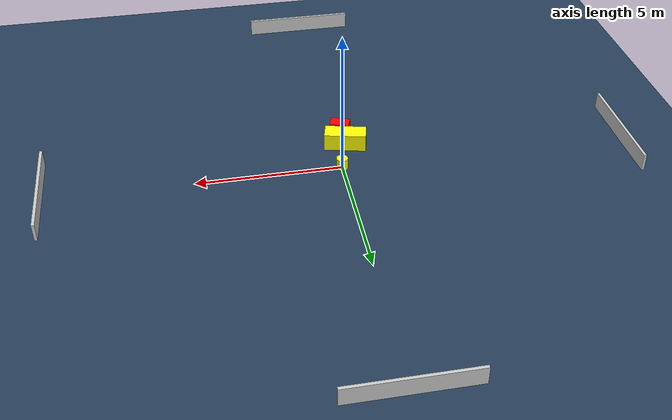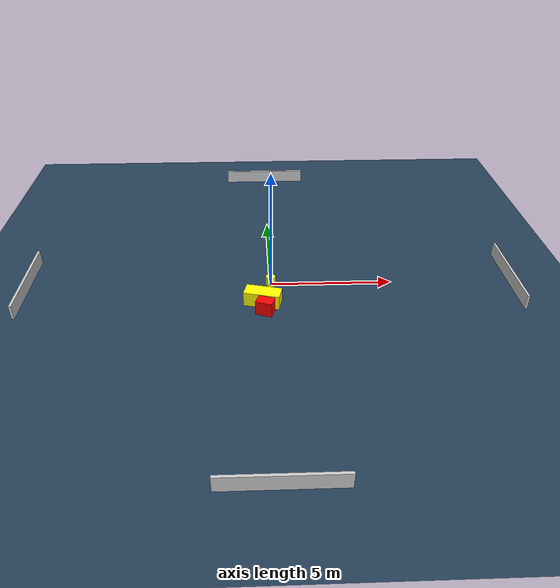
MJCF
<?xml version="1.0" ?>
<mujoco model="generated_environment">
  <option timestep="0.01" integrator="RK4" cone="elliptic"/>
  <default>
    <geom density="1"/>
  </default>
  <asset>
    <texture builtin="gradient" height="3072" name="skybox" rgb1="0.3 0.5 0.7" rgb2="0 0 0" type="skybox" width="512"/>
    <texture builtin="checker" height="300" name="groundplane" rgb1="0.2 0.3 0.4" rgb2="0.1 0.2 0.3" type="2d" width="300"/>
    <material name="groundplane" reflectance="0.2" texrepeat="5 5" texture="groundplane"/>
  </asset>
  <worldbody>
    <light dir="0 0 -1" directional="true" pos="0 0 1.5"/>
    <geom condim="3" friction="0.5 0.005 0.001" material="groundplane" name="floor" pos="0 0 0" size="0 0 0.05" type="plane"/>
    <body name="walls">
      <geom name="wall_1" condim="4" pos="-10.0 0.0 0.3" rgba="0.800000011920929 0.800000011920929 0.800000011920929 1.0" size="0.05 2.0 0.3" type="box"/>
      <geom name="wall_2" condim="4" pos="10.0 0.0 0.3" rgba="0.800000011920929 0.800000011920929 0.800000011920929 1.0" size="0.05 2.0 0.3" type="box"/>
      <geom name="wall_3" condim="4" pos="0.0 -10.0 0.3" rgba="0.800000011920929 0.800000011920929 0.800000011920929 1.0" size="2.0 0.05 0.3" type="box"/>
      <geom name="wall_4" condim="4" pos="0.0 10.0 0.3" rgba="0.800000011920929 0.800000011920929 0.800000011920929 1.0" size="2.0 0.05 0.3" type="box"/>
    </body>
    <body name="robot">
      <joint name="joint_x" type="slide" pos="0 0 0" axis="1 0 0"/>
      <joint name="joint_y" type="slide" pos="0 0 0" axis="0 1 0"/>
      <geom name="robot" type="cylinder" pos="0.0 0.0 0.2" size="0.2 0.2 0.0" mass="5.0" friction="1.0 0.005 0.0001" condim="4" rgba="1.0 1.0 0.0 1.0"/>
    </body>
    <body name="obstacle_1_movable">
      <geom name="obstacle_1_movable" condim="4" pos="-0.35055234835953847 -1.2776901863609196 0.3" euler="0 0 346.4900977640184" friction="0.0 0.005 0.001" rgba="1.0 1.0 0.0 1.0" size="0.7204887137713525 0.31434588398373314 0.3" type="box" mass="0.1"/>
      <joint type="free"/>
    </body>
    <body name="obstacle_2_static">
      <geom name="obstacle_2_static" condim="4" pos="-0.27200923783562725 -1.9001049875074245 0.3" euler="0 0 250.19152261699867" friction="0.0 0.005 0.001" rgba="1.0 0.0 0.0 1.0" size="0.2270675073910659 0.3346562263274603 0.3" type="box"/>
    </body>
  </worldbody>
  <actuator>
    <motor name="actuator_x" joint="joint_x" gear="1" ctrlrange="-1 1"/>
    <motor name="actuator_y" joint="joint_y" gear="1" ctrlrange="-1 1"/>
  </actuator>
</mujoco>
